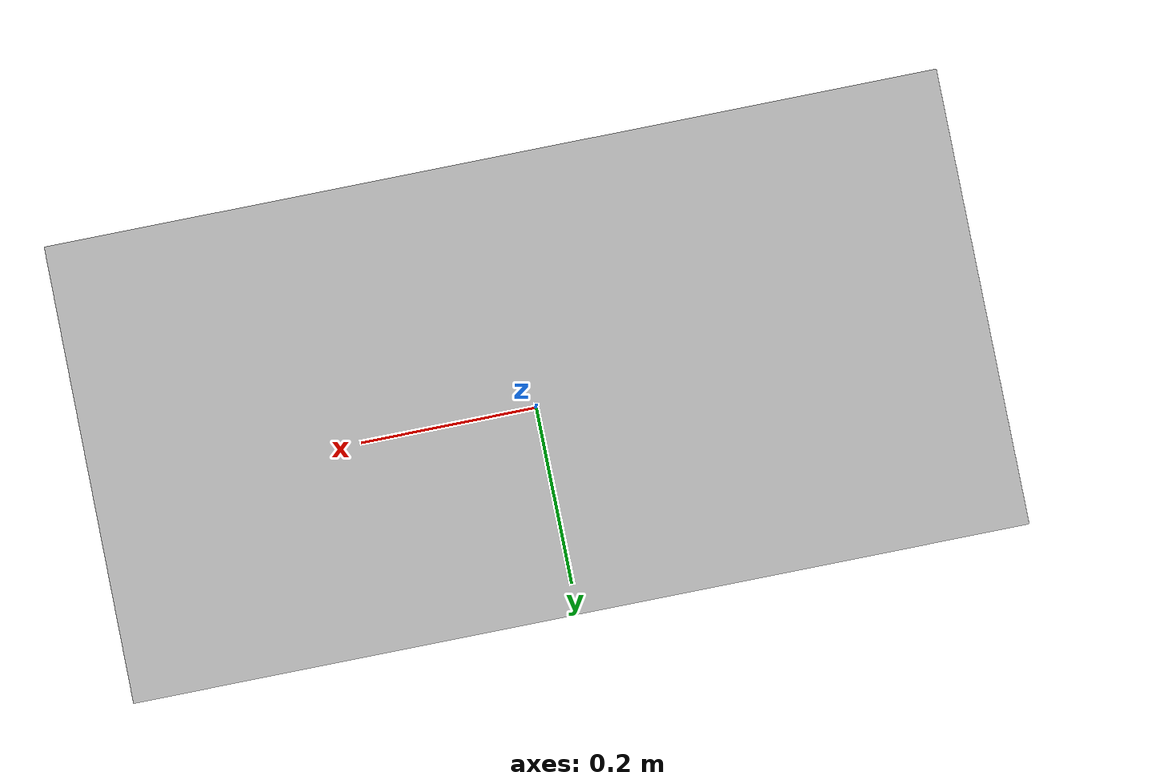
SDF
<?xml version='1.0' encoding='utf-8'?>
<sdf version="1.6">
  <model name="SquareShelf">
   <static>true</static>
    <link name="body">
      <pose>0 0 0 0 0 0</pose>

      <visual name="visual">
        <geometry>
          <mesh>
            <uri>model://SquareShelf/meshes/SquareShelf.obj</uri>
          </mesh>
        </geometry>
      </visual>

      <collision name="collision">
        <geometry>
          <mesh>
            <uri>model://SquareShelf/meshes/SquareShelf_Col.obj</uri>
          </mesh>
        </geometry>
      </collision>

    </link>
  </model>
</sdf>
